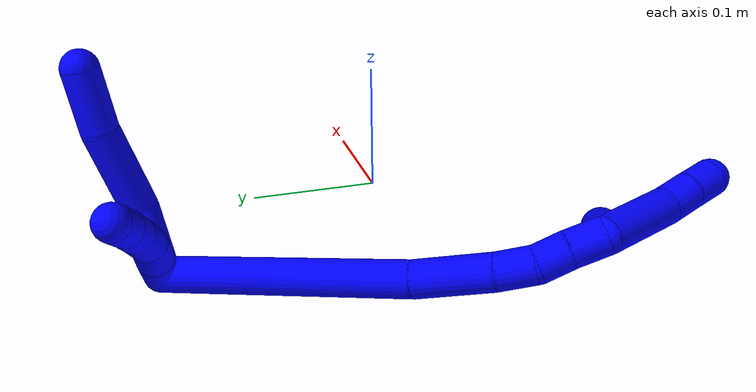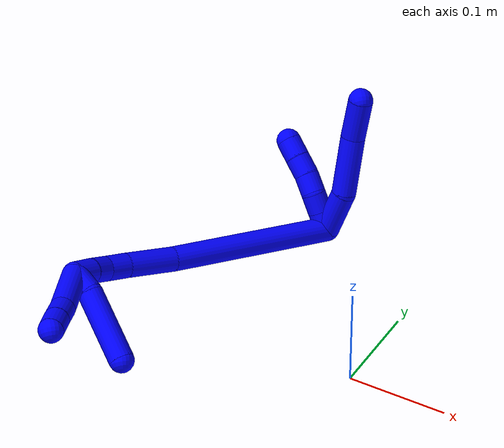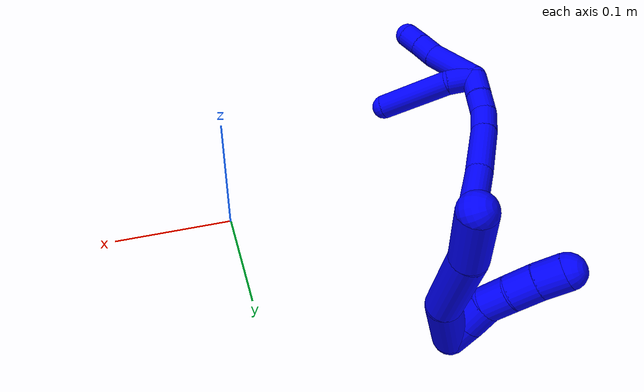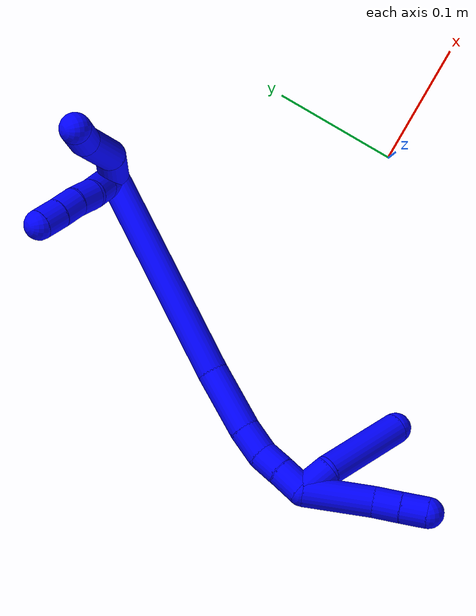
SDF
<sdf version="1.7">
 <world name="default">
  <model name="photoneo_s_sensor">
   <static>1</static>
   <pose>0 0 2 1.57079 1.57079 3.14159</pose>
   <link name="link">
    <inertial><mass>0.1</mass></inertial>
    <sensor name="sensor" type="depth">
     <update_rate>30</update_rate>
     <camera>
      <horizontal_fov>1.22</horizontal_fov>
      <image><width>1920</width><height>1200</height><format>B8G8R8</format></image>
      <clip><near>0.1</near><far>4</far></clip>
      <depth_camera><output>points</output></depth_camera>
     </camera>
     <plugin name="camera_plugin" filename="libgazebo_ros_depth_camera.so">
      <baseline>0.2</baseline>
      <alwaysOn>1</alwaysOn>
      <updateRate>0.0</updateRate>
      <cameraName>camera_ir</cameraName>
      <imageTopicName>/camera/color/image_raw</imageTopicName>
      <cameraInfoTopicName>/camera/color/camera_info</cameraInfoTopicName>
      <depthImageTopicName>/camera/depth/image_raw</depthImageTopicName>
      <depthImageCameraInfoTopicName>/camera/depth/camera_info</depthImageCameraInfoTopicName>
      <pointCloudTopicName>/camera/depth/points</pointCloudTopicName>
      <frameName>fr_optical</frameName>
      <pointCloudCutoff>0.1</pointCloudCutoff>
      <pointCloudCutoffMax>2.0</pointCloudCutoffMax>
      <distortionK1>0</distortionK1>
      <distortionK2>0</distortionK2>
      <distortionK3>0</distortionK3>
      <distortionT1>0</distortionT1>
      <distortionT2>0</distortionT2>
      <CxPrime>0</CxPrime>
      <Cx>0</Cx>
      <Cy>0</Cy>
      <focalLength>0</focalLength>
      <hackBaseline>0</hackBaseline>
     </plugin>
    </sensor>
   </link>
  </model>
  <model name="bin">
   <static>1</static>
   <link name="bottom">
    <collision name="collision-bottom">
     <pose>0 0 -0.01 0 -0 0</pose>
     <geometry><box><size>0.8 0.6 0.02</size></box></geometry>
     <surface>
      <friction><ode><mu>100</mu><mu2>100</mu2></ode></friction>
      <contact><collide_bitmask>65535</collide_bitmask></contact>
     </surface>
    </collision>
   </link>
   <link name="west_wall">
    <collision name="collision-west_wall">
     <pose>-0.41 0 0.1 0 -0 0</pose>
     <geometry><box><size>0.02 0.6 0.2</size></box></geometry>
     <surface>
      <friction><ode><mu>100</mu><mu2>100</mu2></ode></friction>
      <contact><collide_bitmask>65535</collide_bitmask></contact>
     </surface>
    </collision>
   </link>
   <link name="east_wall">
    <collision name="collision-east_wall">
     <pose>0.41 0 0.1 0 -0 0</pose>
     <geometry><box><size>0.02 0.6 0.2</size></box></geometry>
     <surface>
      <friction><ode><mu>100</mu><mu2>100</mu2></ode></friction>
      <contact><collide_bitmask>65535</collide_bitmask></contact>
     </surface>
    </collision>
   </link>
   <link name="south_wall">
    <collision name="collision-south_wall">
     <pose>0 -0.31 0.1 0 -0 0</pose>
     <geometry><box><size>0.8 0.02 0.2</size></box></geometry>
     <surface>
      <friction><ode><mu>100</mu><mu2>100</mu2></ode></friction>
      <contact><collide_bitmask>65535</collide_bitmask></contact>
     </surface>
    </collision>
   </link>
   <link name="north_wall">
    <collision name="collision-north_wall">
     <pose>0 0.31 0.1 0 -0 0</pose>
     <geometry><box><size>0.8 0.02 0.2</size></box></geometry>
     <surface>
      <friction><ode><mu>100</mu><mu2>100</mu2></ode></friction>
      <contact><collide_bitmask>65535</collide_bitmask></contact>
     </surface>
    </collision>
   </link>
  </model>
  <model name="1">
   <static>0</static>
   <link name="1">
    <collision name="collision-cylinder-e_1_2_8">
     <pose>0.019988 -0.003227 0.01248 0.252991 0.998009 0.138402</pose>
     <geometry><cylinder><radius>0.0125</radius><length>0.047569</length></cylinder></geometry>
     <surface>
      <friction><ode><mu>1.16</mu><mu2>1.16</mu2><slip1>0</slip1><slip2>0</slip2></ode></friction>
      <contact><ode><kp>1e+06</kp><kd>1</kd><max_vel>0</max_vel><min_depth>0.001</min_depth></ode></contact>
     </surface>
    </collision>
    <visual name="visual-cylinder-e_1_2_8">
     <pose>0.019988 -0.003227 0.01248 0.252991 0.998009 0.138402</pose>
     <geometry><cylinder><radius>0.0125</radius><length>0.047569</length></cylinder></geometry>
     <material><ambient>0 0 1 1</ambient></material>
    </visual>
    <collision name="collision-cylinder-e_2_8_9">
     <pose>0.058824 -0.011181 0.048353 0.19941 0.668463 0.06945</pose>
     <geometry><cylinder><radius>0.0125</radius><length>0.060821</length></cylinder></geometry>
     <surface>
      <friction><ode><mu>1.16</mu><mu2>1.16</mu2><slip1>0</slip1><slip2>0</slip2></ode></friction>
      <contact><ode><kp>1e+06</kp><kd>1</kd><max_vel>0</max_vel><min_depth>0.001</min_depth></ode></contact>
     </surface>
    </collision>
    <visual name="visual-cylinder-e_2_8_9">
     <pose>0.058824 -0.011181 0.048353 0.19941 0.668463 0.06945</pose>
     <geometry><cylinder><radius>0.0125</radius><length>0.060821</length></cylinder></geometry>
     <material><ambient>0 0 1 1</ambient></material>
    </visual>
    <collision name="collision-cylinder-e_3_9_6">
     <pose>0.092711 -0.020923 0.085219 0.356331 0.807915 0.153649</pose>
     <geometry><cylinder><radius>0.0125</radius><length>0.04161</length></cylinder></geometry>
     <surface>
      <friction><ode><mu>1.16</mu><mu2>1.16</mu2><slip1>0</slip1><slip2>0</slip2></ode></friction>
      <contact><ode><kp>1e+06</kp><kd>1</kd><max_vel>0</max_vel><min_depth>0.001</min_depth></ode></contact>
     </surface>
    </collision>
    <visual name="visual-cylinder-e_3_9_6">
     <pose>0.092711 -0.020923 0.085219 0.356331 0.807915 0.153649</pose>
     <geometry><cylinder><radius>0.0125</radius><length>0.04161</length></cylinder></geometry>
     <material><ambient>0 0 1 1</ambient></material>
    </visual>
    <collision name="collision-cylinder-e_1_2_10">
     <pose>0.001626 -0.004196 0.00893 0.439248 0.16331 0.036532</pose>
     <geometry><cylinder><radius>0.0125</radius><length>0.02</length></cylinder></geometry>
     <surface>
      <friction><ode><mu>1.16</mu><mu2>1.16</mu2><slip1>0</slip1><slip2>0</slip2></ode></friction>
      <contact><ode><kp>1e+06</kp><kd>1</kd><max_vel>0</max_vel><min_depth>0.001</min_depth></ode></contact>
     </surface>
    </collision>
    <visual name="visual-cylinder-e_1_2_10">
     <pose>0.001626 -0.004196 0.00893 0.439248 0.16331 0.036532</pose>
     <geometry><cylinder><radius>0.0125</radius><length>0.02</length></cylinder></geometry>
     <material><ambient>0 0 1 1</ambient></material>
    </visual>
    <collision name="collision-cylinder-e_2_10_11">
     <pose>0.005401 -0.012729 0.026611 0.460101 0.216599 0.050915</pose>
     <geometry><cylinder><radius>0.0125</radius><length>0.02</length></cylinder></geometry>
     <surface>
      <friction><ode><mu>1.16</mu><mu2>1.16</mu2><slip1>0</slip1><slip2>0</slip2></ode></friction>
      <contact><ode><kp>1e+06</kp><kd>1</kd><max_vel>0</max_vel><min_depth>0.001</min_depth></ode></contact>
     </surface>
    </collision>
    <visual name="visual-cylinder-e_2_10_11">
     <pose>0.005401 -0.012729 0.026611 0.460101 0.216599 0.050915</pose>
     <geometry><cylinder><radius>0.0125</radius><length>0.02</length></cylinder></geometry>
     <material><ambient>0 0 1 1</ambient></material>
    </visual>
    <collision name="collision-cylinder-e_3_11_12">
     <pose>0.00765 -0.019532 0.045053 0.249224 0.00998 0.00125</pose>
     <geometry><cylinder><radius>0.0125</radius><length>0.02</length></cylinder></geometry>
     <surface>
      <friction><ode><mu>1.16</mu><mu2>1.16</mu2><slip1>0</slip1><slip2>0</slip2></ode></friction>
      <contact><ode><kp>1e+06</kp><kd>1</kd><max_vel>0</max_vel><min_depth>0.001</min_depth></ode></contact>
     </surface>
    </collision>
    <visual name="visual-cylinder-e_3_11_12">
     <pose>0.00765 -0.019532 0.045053 0.249224 0.00998 0.00125</pose>
     <geometry><cylinder><radius>0.0125</radius><length>0.02</length></cylinder></geometry>
     <material><ambient>0 0 1 1</ambient></material>
    </visual>
    <collision name="collision-cylinder-e_4_12_13">
     <pose>0.006686 -0.025036 0.064211 0.310438 -0.106572 -0.016692</pose>
     <geometry><cylinder><radius>0.0125</radius><length>0.02</length></cylinder></geometry>
     <surface>
      <friction><ode><mu>1.16</mu><mu2>1.16</mu2><slip1>0</slip1><slip2>0</slip2></ode></friction>
      <contact><ode><kp>1e+06</kp><kd>1</kd><max_vel>0</max_vel><min_depth>0.001</min_depth></ode></contact>
     </surface>
    </collision>
    <visual name="visual-cylinder-e_4_12_13">
     <pose>0.006686 -0.025036 0.064211 0.310438 -0.106572 -0.016692</pose>
     <geometry><cylinder><radius>0.0125</radius><length>0.02</length></cylinder></geometry>
     <material><ambient>0 0 1 1</ambient></material>
    </visual>
    <collision name="collision-cylinder-e_5_13_5">
     <pose>0.004186 -0.030569 0.083255 0.254941 -0.144153 -0.018507</pose>
     <geometry><cylinder><radius>0.0125</radius><length>0.02</length></cylinder></geometry>
     <surface>
      <friction><ode><mu>1.16</mu><mu2>1.16</mu2><slip1>0</slip1><slip2>0</slip2></ode></friction>
      <contact><ode><kp>1e+06</kp><kd>1</kd><max_vel>0</max_vel><min_depth>0.001</min_depth></ode></contact>
     </surface>
    </collision>
    <visual name="visual-cylinder-e_5_13_5">
     <pose>0.004186 -0.030569 0.083255 0.254941 -0.144153 -0.018507</pose>
     <geometry><cylinder><radius>0.0125</radius><length>0.02</length></cylinder></geometry>
     <material><ambient>0 0 1 1</ambient></material>
    </visual>
    <collision name="collision-cylinder-e_1_2_14">
     <pose>-0.026183 -0.083651 -0.010709 1.69812 -0.301038 -0.341289</pose>
     <geometry><cylinder><radius>0.0125</radius><length>0.176609</length></cylinder></geometry>
     <surface>
      <friction><ode><mu>1.16</mu><mu2>1.16</mu2><slip1>0</slip1><slip2>0</slip2></ode></friction>
      <contact><ode><kp>1e+06</kp><kd>1</kd><max_vel>0</max_vel><min_depth>0.001</min_depth></ode></contact>
     </surface>
    </collision>
    <visual name="visual-cylinder-e_1_2_14">
     <pose>-0.026183 -0.083651 -0.010709 1.69812 -0.301038 -0.341289</pose>
     <geometry><cylinder><radius>0.0125</radius><length>0.176609</length></cylinder></geometry>
     <material><ambient>0 0 1 1</ambient></material>
    </visual>
    <collision name="collision-cylinder-e_2_14_15">
     <pose>-0.057704 -0.193284 -0.023858 1.66444 -0.201739 -0.221418</pose>
     <geometry><cylinder><radius>0.0125</radius><length>0.053275</length></cylinder></geometry>
     <surface>
      <friction><ode><mu>1.16</mu><mu2>1.16</mu2><slip1>0</slip1><slip2>0</slip2></ode></friction>
      <contact><ode><kp>1e+06</kp><kd>1</kd><max_vel>0</max_vel><min_depth>0.001</min_depth></ode></contact>
     </surface>
    </collision>
    <visual name="visual-cylinder-e_2_14_15">
     <pose>-0.057704 -0.193284 -0.023858 1.66444 -0.201739 -0.221418</pose>
     <geometry><cylinder><radius>0.0125</radius><length>0.053275</length></cylinder></geometry>
     <material><ambient>0 0 1 1</ambient></material>
    </visual>
    <collision name="collision-cylinder-e_3_15_16">
     <pose>-0.064294 -0.231687 -0.02803 1.7093 -0.099552 -0.114362</pose>
     <geometry><cylinder><radius>0.0125</radius><length>0.025204</length></cylinder></geometry>
     <surface>
      <friction><ode><mu>1.16</mu><mu2>1.16</mu2><slip1>0</slip1><slip2>0</slip2></ode></friction>
      <contact><ode><kp>1e+06</kp><kd>1</kd><max_vel>0</max_vel><min_depth>0.001</min_depth></ode></contact>
     </surface>
    </collision>
    <visual name="visual-cylinder-e_3_15_16">
     <pose>-0.064294 -0.231687 -0.02803 1.7093 -0.099552 -0.114362</pose>
     <geometry><cylinder><radius>0.0125</radius><length>0.025204</length></cylinder></geometry>
     <material><ambient>0 0 1 1</ambient></material>
    </visual>
    <collision name="collision-cylinder-e_4_16_17">
     <pose>-0.063622 -0.254371 -0.031713 1.75873 0.182156 0.219784</pose>
     <geometry><cylinder><radius>0.0125</radius><length>0.021249</length></cylinder></geometry>
     <surface>
      <friction><ode><mu>1.16</mu><mu2>1.16</mu2><slip1>0</slip1><slip2>0</slip2></ode></friction>
      <contact><ode><kp>1e+06</kp><kd>1</kd><max_vel>0</max_vel><min_depth>0.001</min_depth></ode></contact>
     </surface>
    </collision>
    <visual name="visual-cylinder-e_4_16_17">
     <pose>-0.063622 -0.254371 -0.031713 1.75873 0.182156 0.219784</pose>
     <geometry><cylinder><radius>0.0125</radius><length>0.021249</length></cylinder></geometry>
     <material><ambient>0 0 1 1</ambient></material>
    </visual>
    <collision name="collision-cylinder-e_5_17_1">
     <pose>-0.060283 -0.276101 -0.036223 1.79031 0.11982 0.149401</pose>
     <geometry><cylinder><radius>0.0125</radius><length>0.023663</length></cylinder></geometry>
     <surface>
      <friction><ode><mu>1.16</mu><mu2>1.16</mu2><slip1>0</slip1><slip2>0</slip2></ode></friction>
      <contact><ode><kp>1e+06</kp><kd>1</kd><max_vel>0</max_vel><min_depth>0.001</min_depth></ode></contact>
     </surface>
    </collision>
    <visual name="visual-cylinder-e_5_17_1">
     <pose>-0.060283 -0.276101 -0.036223 1.79031 0.11982 0.149401</pose>
     <geometry><cylinder><radius>0.0125</radius><length>0.023663</length></cylinder></geometry>
     <material><ambient>0 0 1 1</ambient></material>
    </visual>
    <collision name="collision-cylinder-e_1_1_18">
     <pose>-0.049923 -0.305142 -0.058747 2.41974 0.324432 0.81821</pose>
     <geometry><cylinder><radius>0.0125</radius><length>0.056129</length></cylinder></geometry>
     <surface>
      <friction><ode><mu>1.16</mu><mu2>1.16</mu2><slip1>0</slip1><slip2>0</slip2></ode></friction>
      <contact><ode><kp>1e+06</kp><kd>1</kd><max_vel>0</max_vel><min_depth>0.001</min_depth></ode></contact>
     </surface>
    </collision>
    <visual name="visual-cylinder-e_1_1_18">
     <pose>-0.049923 -0.305142 -0.058747 2.41974 0.324432 0.81821</pose>
     <geometry><cylinder><radius>0.0125</radius><length>0.056129</length></cylinder></geometry>
     <material><ambient>0 0 1 1</ambient></material>
    </visual>
    <collision name="collision-cylinder-e_2_18_19">
     <pose>-0.036635 -0.330568 -0.085312 2.26987 0.400453 0.821885</pose>
     <geometry><cylinder><radius>0.0125</radius><length>0.022271</length></cylinder></geometry>
     <surface>
      <friction><ode><mu>1.16</mu><mu2>1.16</mu2><slip1>0</slip1><slip2>0</slip2></ode></friction>
      <contact><ode><kp>1e+06</kp><kd>1</kd><max_vel>0</max_vel><min_depth>0.001</min_depth></ode></contact>
     </surface>
    </collision>
    <visual name="visual-cylinder-e_2_18_19">
     <pose>-0.036635 -0.330568 -0.085312 2.26987 0.400453 0.821885</pose>
     <geometry><cylinder><radius>0.0125</radius><length>0.022271</length></cylinder></geometry>
     <material><ambient>0 0 1 1</ambient></material>
    </visual>
    <collision name="collision-cylinder-e_3_19_4">
     <pose>-0.028231 -0.345844 -0.098616 2.3052 0.385782 0.828182</pose>
     <geometry><cylinder><radius>0.0125</radius><length>0.0216</length></cylinder></geometry>
     <surface>
      <friction><ode><mu>1.16</mu><mu2>1.16</mu2><slip1>0</slip1><slip2>0</slip2></ode></friction>
      <contact><ode><kp>1e+06</kp><kd>1</kd><max_vel>0</max_vel><min_depth>0.001</min_depth></ode></contact>
     </surface>
    </collision>
    <visual name="visual-cylinder-e_3_19_4">
     <pose>-0.028231 -0.345844 -0.098616 2.3052 0.385782 0.828182</pose>
     <geometry><cylinder><radius>0.0125</radius><length>0.0216</length></cylinder></geometry>
     <material><ambient>0 0 1 1</ambient></material>
    </visual>
    <collision name="collision-cylinder-e_1_1_20">
     <pose>-0.052439 -0.285171 -0.050089 -2.93292 0.507612 -2.37422</pose>
     <geometry><cylinder><radius>0.0125</radius><length>0.026453</length></cylinder></geometry>
     <surface>
      <friction><ode><mu>1.16</mu><mu2>1.16</mu2><slip1>0</slip1><slip2>0</slip2></ode></friction>
      <contact><ode><kp>1e+06</kp><kd>1</kd><max_vel>0</max_vel><min_depth>0.001</min_depth></ode></contact>
     </surface>
    </collision>
    <visual name="visual-cylinder-e_1_1_20">
     <pose>-0.052439 -0.285171 -0.050089 -2.93292 0.507612 -2.37422</pose>
     <geometry><cylinder><radius>0.0125</radius><length>0.026453</length></cylinder></geometry>
     <material><ambient>0 0 1 1</ambient></material>
    </visual>
    <collision name="collision-cylinder-e_2_20_3">
     <pose>-0.038133 -0.276962 -0.096843 -2.97902 0.215883 -1.85233</pose>
     <geometry><cylinder><radius>0.0125</radius><length>0.073547</length></cylinder></geometry>
     <surface>
      <friction><ode><mu>1.16</mu><mu2>1.16</mu2><slip1>0</slip1><slip2>0</slip2></ode></friction>
      <contact><ode><kp>1e+06</kp><kd>1</kd><max_vel>0</max_vel><min_depth>0.001</min_depth></ode></contact>
     </surface>
    </collision>
    <visual name="visual-cylinder-e_2_20_3">
     <pose>-0.038133 -0.276962 -0.096843 -2.97902 0.215883 -1.85233</pose>
     <geometry><cylinder><radius>0.0125</radius><length>0.073547</length></cylinder></geometry>
     <material><ambient>0 0 1 1</ambient></material>
    </visual>
    <collision name="collision-sphere-3">
     <pose>-0.030256 -0.271149 -0.13229 0 -0 0</pose>
     <geometry><sphere><radius>0.0125</radius></sphere></geometry>
     <surface>
      <friction><ode><mu>1.16</mu><mu2>1.16</mu2><slip1>0</slip1><slip2>0</slip2></ode></friction>
      <contact><ode><kp>1e+06</kp><kd>1</kd><max_vel>0</max_vel><min_depth>0.001</min_depth></ode></contact>
     </surface>
    </collision>
    <visual name="visual-sphere-3">
     <pose>-0.030256 -0.271149 -0.13229 0 -0 0</pose>
     <geometry><sphere><radius>0.0125</radius></sphere></geometry>
     <material><ambient>0 0 1 1</ambient></material>
    </visual>
    <collision name="collision-sphere-20">
     <pose>-0.04601 -0.282776 -0.061397 0 -0 0</pose>
     <geometry><sphere><radius>0.0125</radius></sphere></geometry>
     <surface>
      <friction><ode><mu>1.16</mu><mu2>1.16</mu2><slip1>0</slip1><slip2>0</slip2></ode></friction>
      <contact><ode><kp>1e+06</kp><kd>1</kd><max_vel>0</max_vel><min_depth>0.001</min_depth></ode></contact>
     </surface>
    </collision>
    <visual name="visual-sphere-20">
     <pose>-0.04601 -0.282776 -0.061397 0 -0 0</pose>
     <geometry><sphere><radius>0.0125</radius></sphere></geometry>
     <material><ambient>0 0 1 1</ambient></material>
    </visual>
    <collision name="collision-sphere-4">
     <pose>-0.024167 -0.353271 -0.105322 0 -0 0</pose>
     <geometry><sphere><radius>0.0125</radius></sphere></geometry>
     <surface>
      <friction><ode><mu>1.16</mu><mu2>1.16</mu2><slip1>0</slip1><slip2>0</slip2></ode></friction>
      <contact><ode><kp>1e+06</kp><kd>1</kd><max_vel>0</max_vel><min_depth>0.001</min_depth></ode></contact>
     </surface>
    </collision>
    <visual name="visual-sphere-4">
     <pose>-0.024167 -0.353271 -0.105322 0 -0 0</pose>
     <geometry><sphere><radius>0.0125</radius></sphere></geometry>
     <material><ambient>0 0 1 1</ambient></material>
    </visual>
    <collision name="collision-sphere-11">
     <pose>0.00755 -0.017065 0.035362 0 -0 0</pose>
     <geometry><sphere><radius>0.0125</radius></sphere></geometry>
     <surface>
      <friction><ode><mu>1.16</mu><mu2>1.16</mu2><slip1>0</slip1><slip2>0</slip2></ode></friction>
      <contact><ode><kp>1e+06</kp><kd>1</kd><max_vel>0</max_vel><min_depth>0.001</min_depth></ode></contact>
     </surface>
    </collision>
    <visual name="visual-sphere-11">
     <pose>0.00755 -0.017065 0.035362 0 -0 0</pose>
     <geometry><sphere><radius>0.0125</radius></sphere></geometry>
     <material><ambient>0 0 1 1</ambient></material>
    </visual>
    <collision name="collision-sphere-10">
     <pose>0.003252 -0.008392 0.017861 0 -0 0</pose>
     <geometry><sphere><radius>0.0125</radius></sphere></geometry>
     <surface>
      <friction><ode><mu>1.16</mu><mu2>1.16</mu2><slip1>0</slip1><slip2>0</slip2></ode></friction>
      <contact><ode><kp>1e+06</kp><kd>1</kd><max_vel>0</max_vel><min_depth>0.001</min_depth></ode></contact>
     </surface>
    </collision>
    <visual name="visual-sphere-10">
     <pose>0.003252 -0.008392 0.017861 0 -0 0</pose>
     <geometry><sphere><radius>0.0125</radius></sphere></geometry>
     <material><ambient>0 0 1 1</ambient></material>
    </visual>
    <collision name="collision-sphere-6">
     <pose>0.10775 -0.025938 0.098692 0 -0 0</pose>
     <geometry><sphere><radius>0.0125</radius></sphere></geometry>
     <surface>
      <friction><ode><mu>1.16</mu><mu2>1.16</mu2><slip1>0</slip1><slip2>0</slip2></ode></friction>
      <contact><ode><kp>1e+06</kp><kd>1</kd><max_vel>0</max_vel><min_depth>0.001</min_depth></ode></contact>
     </surface>
    </collision>
    <visual name="visual-sphere-6">
     <pose>0.10775 -0.025938 0.098692 0 -0 0</pose>
     <geometry><sphere><radius>0.0125</radius></sphere></geometry>
     <material><ambient>0 0 1 1</ambient></material>
    </visual>
    <collision name="collision-sphere-9">
     <pose>0.077672 -0.015908 0.071745 0 -0 0</pose>
     <geometry><sphere><radius>0.0125</radius></sphere></geometry>
     <surface>
      <friction><ode><mu>1.16</mu><mu2>1.16</mu2><slip1>0</slip1><slip2>0</slip2></ode></friction>
      <contact><ode><kp>1e+06</kp><kd>1</kd><max_vel>0</max_vel><min_depth>0.001</min_depth></ode></contact>
     </surface>
    </collision>
    <visual name="visual-sphere-9">
     <pose>0.077672 -0.015908 0.071745 0 -0 0</pose>
     <geometry><sphere><radius>0.0125</radius></sphere></geometry>
     <material><ambient>0 0 1 1</ambient></material>
    </visual>
    <collision name="collision-sphere-2">
     <geometry><sphere><radius>0.0125</radius></sphere></geometry>
     <surface>
      <friction><ode><mu>1.16</mu><mu2>1.16</mu2><slip1>0</slip1><slip2>0</slip2></ode></friction>
      <contact><ode><kp>1e+06</kp><kd>1</kd><max_vel>0</max_vel><min_depth>0.001</min_depth></ode></contact>
     </surface>
    </collision>
    <visual name="visual-sphere-2">
     <geometry><sphere><radius>0.0125</radius></sphere></geometry>
     <material><ambient>0 0 1 1</ambient></material>
    </visual>
    <collision name="collision-sphere-19">
     <pose>-0.032294 -0.338418 -0.091911 0 -0 0</pose>
     <geometry><sphere><radius>0.0125</radius></sphere></geometry>
     <surface>
      <friction><ode><mu>1.16</mu><mu2>1.16</mu2><slip1>0</slip1><slip2>0</slip2></ode></friction>
      <contact><ode><kp>1e+06</kp><kd>1</kd><max_vel>0</max_vel><min_depth>0.001</min_depth></ode></contact>
     </surface>
    </collision>
    <visual name="visual-sphere-19">
     <pose>-0.032294 -0.338418 -0.091911 0 -0 0</pose>
     <geometry><sphere><radius>0.0125</radius></sphere></geometry>
     <material><ambient>0 0 1 1</ambient></material>
    </visual>
    <collision name="collision-sphere-8">
     <pose>0.039977 -0.006453 0.024961 0 -0 0</pose>
     <geometry><sphere><radius>0.0125</radius></sphere></geometry>
     <surface>
      <friction><ode><mu>1.16</mu><mu2>1.16</mu2><slip1>0</slip1><slip2>0</slip2></ode></friction>
      <contact><ode><kp>1e+06</kp><kd>1</kd><max_vel>0</max_vel><min_depth>0.001</min_depth></ode></contact>
     </surface>
    </collision>
    <visual name="visual-sphere-8">
     <pose>0.039977 -0.006453 0.024961 0 -0 0</pose>
     <geometry><sphere><radius>0.0125</radius></sphere></geometry>
     <material><ambient>0 0 1 1</ambient></material>
    </visual>
    <collision name="collision-sphere-12">
     <pose>0.007749 -0.021998 0.054743 0 -0 0</pose>
     <geometry><sphere><radius>0.0125</radius></sphere></geometry>
     <surface>
      <friction><ode><mu>1.16</mu><mu2>1.16</mu2><slip1>0</slip1><slip2>0</slip2></ode></friction>
      <contact><ode><kp>1e+06</kp><kd>1</kd><max_vel>0</max_vel><min_depth>0.001</min_depth></ode></contact>
     </surface>
    </collision>
    <visual name="visual-sphere-12">
     <pose>0.007749 -0.021998 0.054743 0 -0 0</pose>
     <geometry><sphere><radius>0.0125</radius></sphere></geometry>
     <material><ambient>0 0 1 1</ambient></material>
    </visual>
    <collision name="collision-sphere-13">
     <pose>0.005622 -0.028073 0.073679 0 -0 0</pose>
     <geometry><sphere><radius>0.0125</radius></sphere></geometry>
     <surface>
      <friction><ode><mu>1.16</mu><mu2>1.16</mu2><slip1>0</slip1><slip2>0</slip2></ode></friction>
      <contact><ode><kp>1e+06</kp><kd>1</kd><max_vel>0</max_vel><min_depth>0.001</min_depth></ode></contact>
     </surface>
    </collision>
    <visual name="visual-sphere-13">
     <pose>0.005622 -0.028073 0.073679 0 -0 0</pose>
     <geometry><sphere><radius>0.0125</radius></sphere></geometry>
     <material><ambient>0 0 1 1</ambient></material>
    </visual>
    <collision name="collision-sphere-5">
     <pose>0.002749 -0.033064 0.092832 0 -0 0</pose>
     <geometry><sphere><radius>0.0125</radius></sphere></geometry>
     <surface>
      <friction><ode><mu>1.16</mu><mu2>1.16</mu2><slip1>0</slip1><slip2>0</slip2></ode></friction>
      <contact><ode><kp>1e+06</kp><kd>1</kd><max_vel>0</max_vel><min_depth>0.001</min_depth></ode></contact>
     </surface>
    </collision>
    <visual name="visual-sphere-5">
     <pose>0.002749 -0.033064 0.092832 0 -0 0</pose>
     <geometry><sphere><radius>0.0125</radius></sphere></geometry>
     <material><ambient>0 0 1 1</ambient></material>
    </visual>
    <collision name="collision-sphere-14">
     <pose>-0.052367 -0.167301 -0.021418 0 -0 0</pose>
     <geometry><sphere><radius>0.0125</radius></sphere></geometry>
     <surface>
      <friction><ode><mu>1.16</mu><mu2>1.16</mu2><slip1>0</slip1><slip2>0</slip2></ode></friction>
      <contact><ode><kp>1e+06</kp><kd>1</kd><max_vel>0</max_vel><min_depth>0.001</min_depth></ode></contact>
     </surface>
    </collision>
    <visual name="visual-sphere-14">
     <pose>-0.052367 -0.167301 -0.021418 0 -0 0</pose>
     <geometry><sphere><radius>0.0125</radius></sphere></geometry>
     <material><ambient>0 0 1 1</ambient></material>
    </visual>
    <collision name="collision-sphere-15">
     <pose>-0.063042 -0.219267 -0.026298 0 -0 0</pose>
     <geometry><sphere><radius>0.0125</radius></sphere></geometry>
     <surface>
      <friction><ode><mu>1.16</mu><mu2>1.16</mu2><slip1>0</slip1><slip2>0</slip2></ode></friction>
      <contact><ode><kp>1e+06</kp><kd>1</kd><max_vel>0</max_vel><min_depth>0.001</min_depth></ode></contact>
     </surface>
    </collision>
    <visual name="visual-sphere-15">
     <pose>-0.063042 -0.219267 -0.026298 0 -0 0</pose>
     <geometry><sphere><radius>0.0125</radius></sphere></geometry>
     <material><ambient>0 0 1 1</ambient></material>
    </visual>
    <collision name="collision-sphere-16">
     <pose>-0.065547 -0.244106 -0.029761 0 -0 0</pose>
     <geometry><sphere><radius>0.0125</radius></sphere></geometry>
     <surface>
      <friction><ode><mu>1.16</mu><mu2>1.16</mu2><slip1>0</slip1><slip2>0</slip2></ode></friction>
      <contact><ode><kp>1e+06</kp><kd>1</kd><max_vel>0</max_vel><min_depth>0.001</min_depth></ode></contact>
     </surface>
    </collision>
    <visual name="visual-sphere-16">
     <pose>-0.065547 -0.244106 -0.029761 0 -0 0</pose>
     <geometry><sphere><radius>0.0125</radius></sphere></geometry>
     <material><ambient>0 0 1 1</ambient></material>
    </visual>
    <collision name="collision-sphere-17">
     <pose>-0.061697 -0.264636 -0.033665 0 -0 0</pose>
     <geometry><sphere><radius>0.0125</radius></sphere></geometry>
     <surface>
      <friction><ode><mu>1.16</mu><mu2>1.16</mu2><slip1>0</slip1><slip2>0</slip2></ode></friction>
      <contact><ode><kp>1e+06</kp><kd>1</kd><max_vel>0</max_vel><min_depth>0.001</min_depth></ode></contact>
     </surface>
    </collision>
    <visual name="visual-sphere-17">
     <pose>-0.061697 -0.264636 -0.033665 0 -0 0</pose>
     <geometry><sphere><radius>0.0125</radius></sphere></geometry>
     <material><ambient>0 0 1 1</ambient></material>
    </visual>
    <collision name="collision-sphere-1">
     <pose>-0.058869 -0.287565 -0.038781 0 -0 0</pose>
     <geometry><sphere><radius>0.0125</radius></sphere></geometry>
     <surface>
      <friction><ode><mu>1.16</mu><mu2>1.16</mu2><slip1>0</slip1><slip2>0</slip2></ode></friction>
      <contact><ode><kp>1e+06</kp><kd>1</kd><max_vel>0</max_vel><min_depth>0.001</min_depth></ode></contact>
     </surface>
    </collision>
    <visual name="visual-sphere-1">
     <pose>-0.058869 -0.287565 -0.038781 0 -0 0</pose>
     <geometry><sphere><radius>0.0125</radius></sphere></geometry>
     <material><ambient>0 0 1 1</ambient></material>
    </visual>
    <collision name="collision-sphere-18">
     <pose>-0.040976 -0.322719 -0.078713 0 -0 0</pose>
     <geometry><sphere><radius>0.0125</radius></sphere></geometry>
     <surface>
      <friction><ode><mu>1.16</mu><mu2>1.16</mu2><slip1>0</slip1><slip2>0</slip2></ode></friction>
      <contact><ode><kp>1e+06</kp><kd>1</kd><max_vel>0</max_vel><min_depth>0.001</min_depth></ode></contact>
     </surface>
    </collision>
    <visual name="visual-sphere-18">
     <pose>-0.040976 -0.322719 -0.078713 0 -0 0</pose>
     <geometry><sphere><radius>0.0125</radius></sphere></geometry>
     <material><ambient>0 0 1 1</ambient></material>
    </visual>
    <inertial>
     <pose>-0.015493 -0.141689 -0.012711 0 -0 0</pose>
     <mass>0.75</mass>
     <inertia>
      <ixx>0.000314</ixx>
      <ixy>0</ixy>
      <ixz>0</ixz>
      <iyy>-0.000161</iyy>
      <iyz>0</iyz>
      <izz>0.000574</izz>
     </inertia>
    </inertial>
   </link>
   <pose>-0.126089 0.183761 0.012027 -0.607426 -0.737953 -0.023255</pose>
  </model>
 </world>
</sdf>
